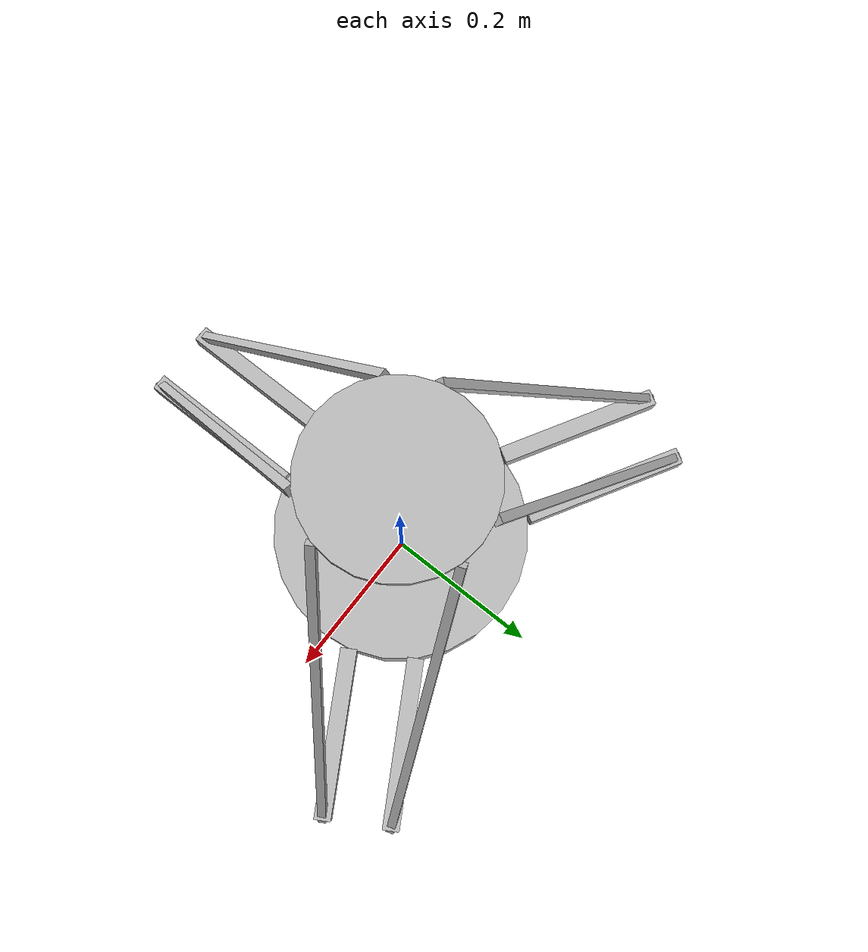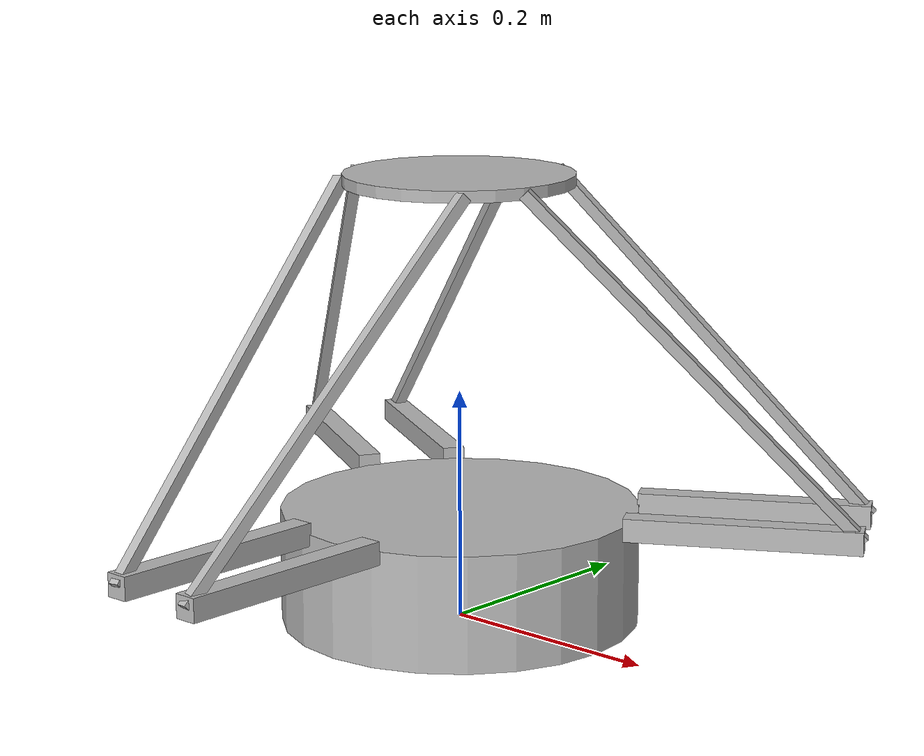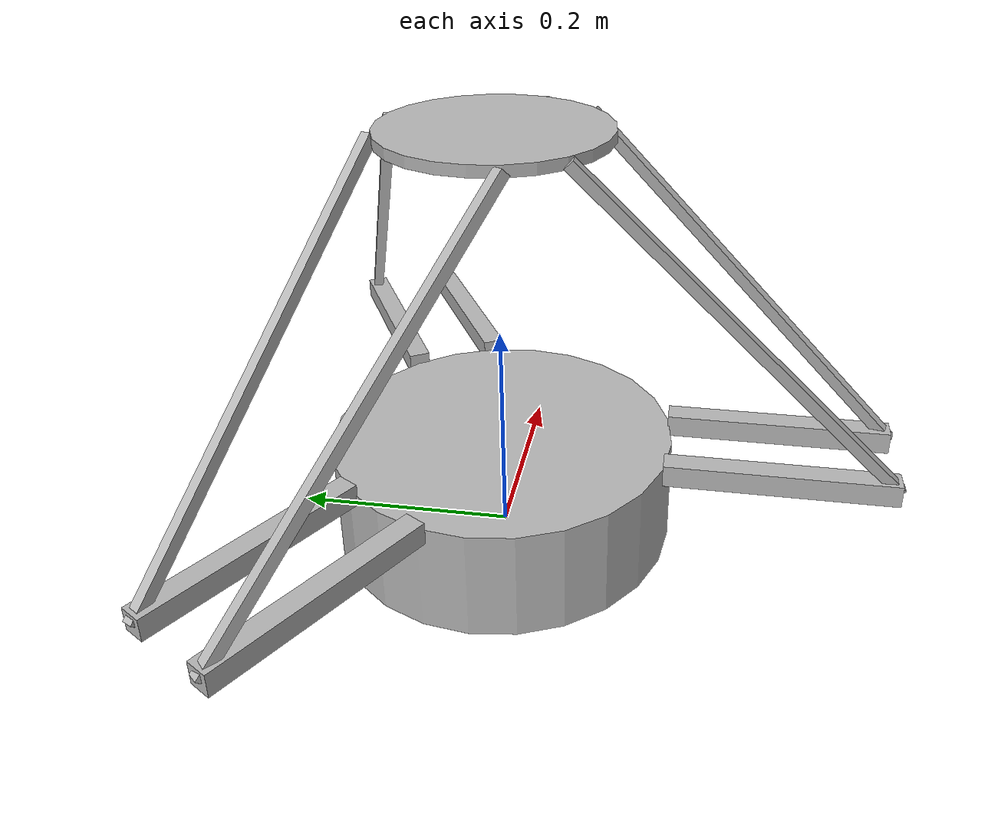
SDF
<?xml version="1.0"?>
<sdf version="1.4">
<model name="stewart_platform">

  <plugin name="joint_controller" filename="libjoint_controller.so"/>

  <joint name="proximal_link_1_joint" type="revolute">
		<parent>base_link</parent>
		<child>proximal_link_1</child>
		<pose>-0.1 0 0 0 0 0</pose>
		<axis>
			<xyz>0.5000001943375613 -0.8660252915835662 0</xyz>
      <limit>
				<lower> -0.785398 </lower>
				<upper> 1.57079 </upper>
				<velocity> 1 </velocity>
			</limit>
		</axis>
	</joint>

  <joint name="proximal_link_2_joint" type="revolute">
		<parent>base_link</parent>
		<child>proximal_link_2</child>
		<pose>-0.1 0 0 0 0 0</pose>
		<axis>
			<xyz>0.5000001943375613 -0.8660252915835662 0</xyz>
      <limit>
				<lower> -0.785398 </lower>
				<upper> 1.57079 </upper>
				<velocity> 1 </velocity>
			</limit>
		</axis>
	</joint>

	<joint name="proximal_link_3_joint" type="revolute">
		<parent>base_link</parent>
		<child>proximal_link_3</child>
		<pose>-0.1 0 0 0 0 0</pose>
		<axis>
			<xyz>0.5000001943375613 0.8660252915835662 0</xyz>
      <limit>
				<lower> -0.785398 </lower>
				<upper> 1.57079 </upper>
				<velocity> 1 </velocity>
			</limit>
		</axis>
	</joint>

  <joint name="proximal_link_4_joint" type="revolute">
		<parent>base_link</parent>
		<child>proximal_link_4</child>
		<pose>-0.1 0 0 0 0 0</pose>
		<axis>
			<xyz>0.5000001943375613 0.8660252915835662 0</xyz>
      <limit>
				<lower> -0.785398 </lower>
				<upper> 1.57079 </upper>
				<velocity> 1 </velocity>
			</limit>
		</axis>
	</joint>

	<joint name="proximal_link_5_joint" type="revolute">
		<parent>base_link</parent>
		<child>proximal_link_5</child>
		<pose>-0.1 0 0 0 0 0</pose>
		<axis>
			<xyz>-1 0 0</xyz>
      <limit>
				<lower> -0.785398 </lower>
				<upper> 1.57079 </upper>
				<velocity> 1 </velocity>
			</limit>
		</axis>
	</joint>

  <joint name="proximal_link_6_joint" type="revolute">
		<parent>base_link</parent>
		<child>proximal_link_6</child>
		<pose>-0.1 0 0 0 0 0</pose>
		<axis>
			<xyz>-1 0 0</xyz>
      <limit>
				<lower> -0.785398 </lower>
				<upper> 1.57079 </upper>
				<velocity> 1 </velocity>
			</limit>
		</axis>
	</joint>

  <joint name="distal_link_1_joint" type="ball">
		<parent>proximal_link_1</parent>
		<child>distal_link_1</child>
		<pose> 0.2 0 0 0 0 0</pose>
		<axis>
			<xyz>1 0 0</xyz>
		</axis>
	</joint>

  <joint name="distal_link_2_joint" type="ball">
		<parent>proximal_link_2</parent>
		<child>distal_link_2</child>
		<pose> 0.2 0 0 0 0 0</pose>
		<axis>
			<xyz>1 0 0</xyz>
		</axis>
	</joint>

  <joint name="distal_link_3_joint" type="ball">
		<parent>proximal_link_3</parent>
		<child>distal_link_3</child>
		<pose> 0.2 0 0 0 0 0</pose>
		<axis>
			<xyz>1 0 0</xyz>
		</axis>
	</joint>

  <joint name="distal_link_4_joint" type="ball">
		<parent>proximal_link_4</parent>
		<child>distal_link_4</child>
		<pose> 0.2 0 0 0 0 0</pose>
		<axis>
			<xyz>1 0 0</xyz>
		</axis>
	</joint>

  <joint name="distal_link_5_joint" type="ball">
		<parent>proximal_link_5</parent>
		<child>distal_link_5</child>
		<pose> 0.2 0 0 0 0 0</pose>
		<axis>
			<xyz>1 0 0</xyz>
		</axis>
	</joint>

  <joint name="distal_link_6_joint" type="ball">
		<parent>proximal_link_6</parent>
		<child>distal_link_6</child>
		<pose> 0.2 0 0 0 0 0</pose>
		<axis>
			<xyz>1 0 0</xyz>
		</axis>
	</joint>

  <joint name="platform_link_1_joint" type="ball">
		<parent>distal_link_1</parent>
		<child>platform_link</child>
		<pose>0.09562178401447893 -0.025621756807220356 0 0 0 0</pose>
	</joint>

  <joint name="platform_link_2_joint" type="ball">
		<parent>distal_link_2</parent>
		<child>platform_link</child>
		<pose>0.025621756807220356 0.09562178401447893 0 0 0 0</pose>
	</joint>

  <joint name="platform_link_3_joint" type="ball">
		<parent>distal_link_3</parent>
		<child>platform_link</child>
		<pose>-0.025621756807220356 0.09562178401447893 0 0 0 0</pose>
	</joint>

  <joint name="platform_link_4_joint" type="ball">
		<parent>distal_link_4</parent>
		<child>platform_link</child>
		<pose>-0.09562178401447893 -0.025621756807220356 0 0 0 0</pose>
	</joint>

  <joint name="platform_link_5_joint" type="ball">
		<parent>distal_link_5</parent>
		<child>platform_link</child>
		<pose>-0.07 -0.07 0 0 0 0</pose>
	</joint>

  <joint name="platform_link_6_joint" type="ball">
		<parent>distal_link_6</parent>
		<child>platform_link</child>
		<pose>0.07 -0.07 0 0 0 0</pose>
	</joint>

  <link name="base_link">
    <pose>0 0 0.05 0 0 0</pose>
    <inertial>
    <mass>0.1</mass>
    <inertia>
      <ixx>0.0005625</ixx>
      <ixy>0.0</ixy>
      <ixz>0.0</ixz>
      <iyy>0.0005625</iyy>
      <iyz>0.0</iyz>
      <izz>0.001125</izz>
    </inertia>
    </inertial>
    <collision name="collision">
      <geometry>
        <cylinder>
          <radius>0.15524174696260024</radius>
          <length>0.1</length>
        </cylinder>
      </geometry>
    </collision>
    <visual name="visual">
      <geometry>
        <cylinder>
          <radius>0.15524174696260024</radius>
          <length>0.1</length>
        </cylinder>
      </geometry>
    </visual>
  </link>

  <link name="proximal_link_1">
    <pose>0.23650633066939403 0.09035903692104766 0.1 0 0 0.523599</pose>
    <inertial>
      <mass>0.002</mass>
      <inertia>
        <ixx>1.0000000000000001e-07</ixx>
        <ixy>0.0</ixy>
        <ixz>0.0</ixz>
        <iyy>6.716398000000002e-05</iyy>
        <iyz>0.0</iyz>
        <izz>6.716398000000002e-05</izz>
      </inertia>
    </inertial>
    <collision name="collision">
      <geometry>
        <box>
          <size>0.2 0.02 0.02</size>
        </box>
      </geometry>
    </collision>
    <visual name="visual">
      <geometry>
        <box>
          <size>0.2 0.02 0.02</size>
        </box>
      </geometry>
    </visual>
  </link>

  <link name="proximal_link_2">
    <pose>0.19650631512238914 0.15964106024773295 0.1 0 0 0.523599</pose>
    <inertial>
    <mass>0.002</mass>
    <inertia>
      <ixx>1.0000000000000001e-07</ixx>
      <ixy>0.0</ixy>
      <ixz>0.0</ixz>
      <iyy>6.716398000000002e-05</iyy>
      <iyz>0.0</iyz>
      <izz>6.716398000000002e-05</izz>
    </inertia>
    </inertial>
    <collision name="collision">
      <geometry>
        <box>
          <size>0.2 0.02 0.02</size>
        </box>
      </geometry>
    </collision>
    <visual name = "visual">
      <geometry>
        <box>
          <size>0.2 0.02 0.02</size>
        </box>
      </geometry>
    </visual>
  </link>

  <link name="proximal_link_3">
    <pose>-0.19650631512238914 0.15964106024773295 0.1 0 0 2.61799</pose>
    <inertial>
    <mass>0.002</mass>
    <inertia>
      <ixx>1.0000000000000001e-07</ixx>
      <ixy>0.0</ixy>
      <ixz>0.0</ixz>
      <iyy>6.716398000000002e-05</iyy>
      <iyz>0.0</iyz>
      <izz>6.716398000000002e-05</izz>
    </inertia>
    </inertial>
    <collision name="collision">
      <geometry>
        <box>
          <size>0.2 0.02 0.02</size>
        </box>
      </geometry>
    </collision>
    <visual name = "visual">
      <geometry>
        <box>
          <size>0.2 0.02 0.02</size>
        </box>
      </geometry>
    </visual>
  </link>

  <link name="proximal_link_4">
    <pose>-0.23650633066939403 0.09035903692104766 0.1 0 0 2.61799</pose>
    <inertial>
    <mass>0.002</mass>
    <inertia>
      <ixx>1.0000000000000001e-07</ixx>
      <ixy>0.0</ixy>
      <ixz>0.0</ixz>
      <iyy>6.716398000000002e-05</iyy>
      <iyz>0.0</iyz>
      <izz>6.716398000000002e-05</izz>
    </inertia>
    </inertial>
    <collision name="collision">
      <geometry>
        <box>
          <size>0.2 0.02 0.02</size>
        </box>
      </geometry>
    </collision>
    <visual name = "visual">
      <geometry>
        <box>
          <size>0.2 0.02 0.02</size>
        </box>
      </geometry>
    </visual>
  </link>

  <link name="proximal_link_5">
    <pose>-0.04 -0.25 0.1 0 0 4.71239</pose>
    <inertial>
    <mass>0.002</mass>
    <inertia>
      <ixx>1.0000000000000001e-07</ixx>
      <ixy>0.0</ixy>
      <ixz>0.0</ixz>
      <iyy>6.716398000000002e-05</iyy>
      <iyz>0.0</iyz>
      <izz>6.716398000000002e-05</izz>
    </inertia>
    </inertial>
    <collision name="collision">
      <geometry>
        <box>
          <size>0.2 0.02 0.02</size>
        </box>
      </geometry>
    </collision>
    <visual name = "visual">
      <geometry>
        <box>
          <size>0.2 0.02 0.02</size>
        </box>
      </geometry>
    </visual>
  </link>

  <link name="proximal_link_6">
    <pose>0.04 -0.25 0.1 0 0 4.71239</pose>
    <inertial>
    <mass>0.002</mass>
    <inertia>
      <ixx>1.0000000000000001e-07</ixx>
      <ixy>0.0</ixy>
      <ixz>0.0</ixz>
      <iyy>6.716398000000002e-05</iyy>
      <iyz>0.0</iyz>
      <izz>6.716398000000002e-05</izz>
    </inertia>
    </inertial>
    <collision name="collision">
      <geometry>
        <box>
          <size>0.2 0.02 0.02</size>
        </box>
      </geometry>
    </collision>
    <visual name = "visual">
      <geometry>
        <box>
          <size>0.2 0.02 0.02</size>
        </box>
      </geometry>
    </visual>
  </link>

  <link name="distal_link_1">
    <pose>0.2093653219211148 0.05736864977379172 0.24203872711341792 -1.4655813026652293 0.7926265735749716 0.6303346726491357</pose>
    <inertial>
    <mass>0.001</mass>
    <inertia>
      <ixx>1.2500000000000001e-08</ixx>
      <ixy>0.0</ixy>
      <ixz>0.0</ixz>
      <iyy>0.0001333904975</iyy>
      <iyz>0.0</iyz>
      <izz>0.0001333904975</izz>
    </inertia>
    </inertial>
    <collision name="collision">
      <geometry>
        <box>
          <size>0.4 0.01 0.01</size>
        </box>
      </geometry>
    </collision>
    <visual name = "visual">
      <geometry>
        <box>
          <size>0.4 0.01 0.01</size>
        </box>
      </geometry>
    </visual>
  </link>

  <link name="distal_link_2">
    <pose>0.15436530054398306 0.152631431847984 0.24203872711341792  -1.4655813026652293 0.7926265735749716 0.4168633273508644</pose>
    <inertial>
    <mass>0.001</mass>
    <inertia>
      <ixx>1.2500000000000001e-08</ixx>
      <ixy>0.0</ixy>
      <ixz>0.0</ixz>
      <iyy>0.0001333904975</iyy>
      <iyz>0.0</iyz>
      <izz>0.0001333904975</izz>
    </inertia>
    </inertial>
    <collision name="collision">
      <geometry>
        <box>
          <size>0.4 0.01 0.01</size>
        </box>
      </geometry>
    </collision>
    <visual name = "visual">
      <geometry>
        <box>
          <size>0.4 0.01 0.01</size>
        </box>
      </geometry>
    </visual>
  </link>

  <link name="distal_link_3">
    <pose>-0.15436530054398306 0.152631431847984 0.24203872711341792  -1.4655813026652293 0.7926265735749716 2.7247256726491353</pose>
    <inertial>
    <mass>0.001</mass>
    <inertia>
      <ixx>1.2500000000000001e-08</ixx>
      <ixy>0.0</ixy>
      <ixz>0.0</ixz>
      <iyy>0.0001333904975</iyy>
      <iyz>0.0</iyz>
      <izz>0.0001333904975</izz>
    </inertia>
    </inertial>
    <collision name="collision">
      <geometry>
        <box>
          <size>0.4 0.01 0.01</size>
        </box>
      </geometry>
    </collision>
    <visual name = "visual">
      <geometry>
        <box>
          <size>0.4 0.01 0.01</size>
        </box>
      </geometry>
    </visual>
  </link>

  <link name="distal_link_4">
    <pose>-0.2093653219211148 0.05736864977379172 0.24203872711341792  -1.4655813026652293 0.7926265735749716 2.5112543273508643</pose>
    <inertial>
    <mass>0.001</mass>
    <inertia>
      <ixx>1.2500000000000001e-08</ixx>
      <ixy>0.0</ixy>
      <ixz>0.0</ixz>
      <iyy>0.0001333904975</iyy>
      <iyz>0.0</iyz>
      <izz>0.0001333904975</izz>
    </inertia>
    </inertial>
    <collision name="collision">
      <geometry>
        <box>
          <size>0.4 0.01 0.01</size>
        </box>
      </geometry>
    </collision>
    <visual name = "visual">
      <geometry>
        <box>
          <size>0.4 0.01 0.01</size>
        </box>
      </geometry>
    </visual>
  </link>

  <link name="distal_link_5">
    <pose>-0.05500000000000001 -0.21 0.24203872711341792  -1.4655813026652293 0.7926265735749716 4.819125672649136</pose>
    <inertial>
    <mass>0.001</mass>
    <inertia>
      <ixx>1.2500000000000001e-08</ixx>
      <ixy>0.0</ixy>
      <ixz>0.0</ixz>
      <iyy>0.0001333904975</iyy>
      <iyz>0.0</iyz>
      <izz>0.0001333904975</izz>
    </inertia>
    </inertial>
    <collision name="collision">
      <geometry>
        <box>
          <size>0.4 0.01 0.01</size>
        </box>
      </geometry>
    </collision>
    <visual name = "visual">
      <geometry>
        <box>
          <size>0.4 0.01 0.01</size>
        </box>
      </geometry>
    </visual>
  </link>

  <link name="distal_link_6">
    <pose>0.05500000000000001 -0.21 0.24203872711341792  -1.4655813026652293 0.7926265735749716 4.605654327350864</pose>
    <inertial>
    <mass>0.001</mass>
    <inertia>
      <ixx>1.2500000000000001e-08</ixx>
      <ixy>0.0</ixy>
      <ixz>0.0</ixz>
      <iyy>0.0001333904975</iyy>
      <iyz>0.0</iyz>
      <izz>0.0001333904975</izz>
    </inertia>
    </inertial>
    <collision name="collision">
      <geometry>
        <box>
          <size>0.4 0.01 0.01</size>
        </box>
      </geometry>
    </collision>
    <visual name = "visual">
      <geometry>
        <box>
          <size>0.4 0.01 0.01</size>
        </box>
      </geometry>
    </visual>
  </link>

  <link name="platform_link">
    <pose>0 0 0.3840774542268358 0 0 0</pose>
    <inertial>
    <mass>0.001</mass>
    <inertia>
      <ixx>0.0005625</ixx>
      <ixy>0.0</ixy>
      <ixz>0.0</ixz>
      <iyy>0.0005625</iyy>
      <iyz>0.0</iyz>
      <izz>0.001125</izz>
    </inertia>
    </inertial>
    <collision name="collision">
      <geometry>
        <cylinder>
          <radius>0.09899494936611666</radius>
          <length>0.01</length>
        </cylinder>
      </geometry>
    </collision>
    <visual name = "visual">
      <geometry>
        <cylinder>
          <radius>0.09899494936611666</radius>
          <length>0.01</length>
        </cylinder>
      </geometry>
    </visual>
  </link>
</model>
</sdf>
